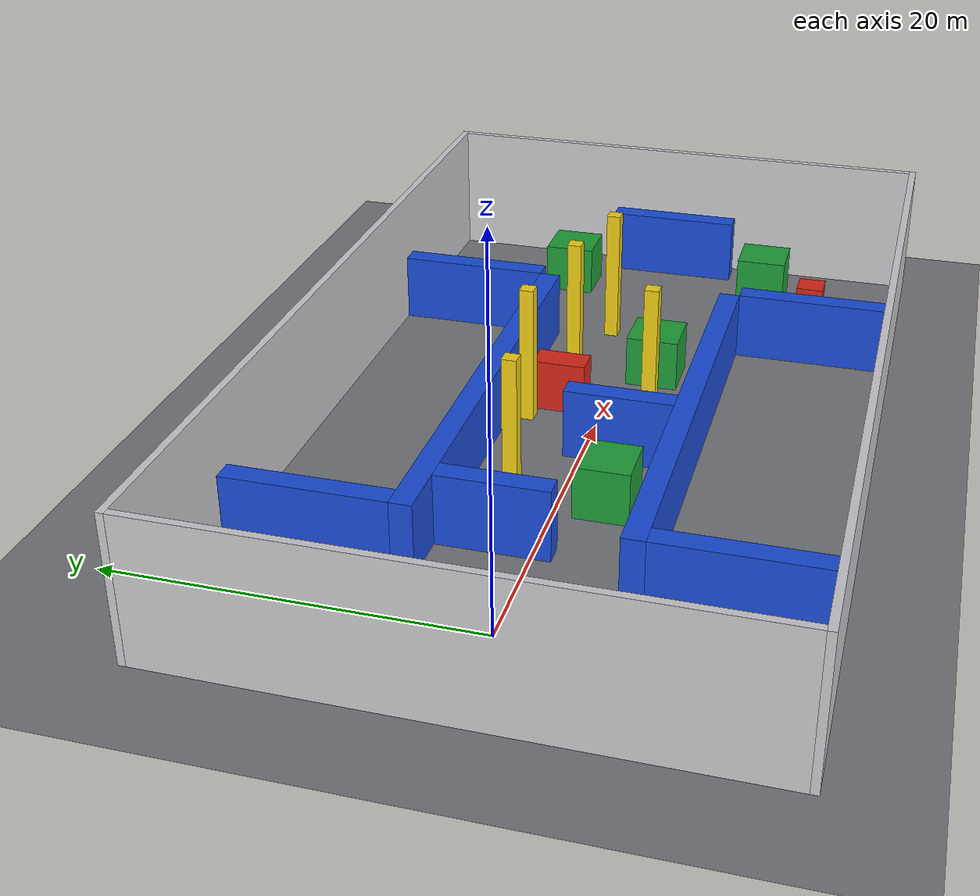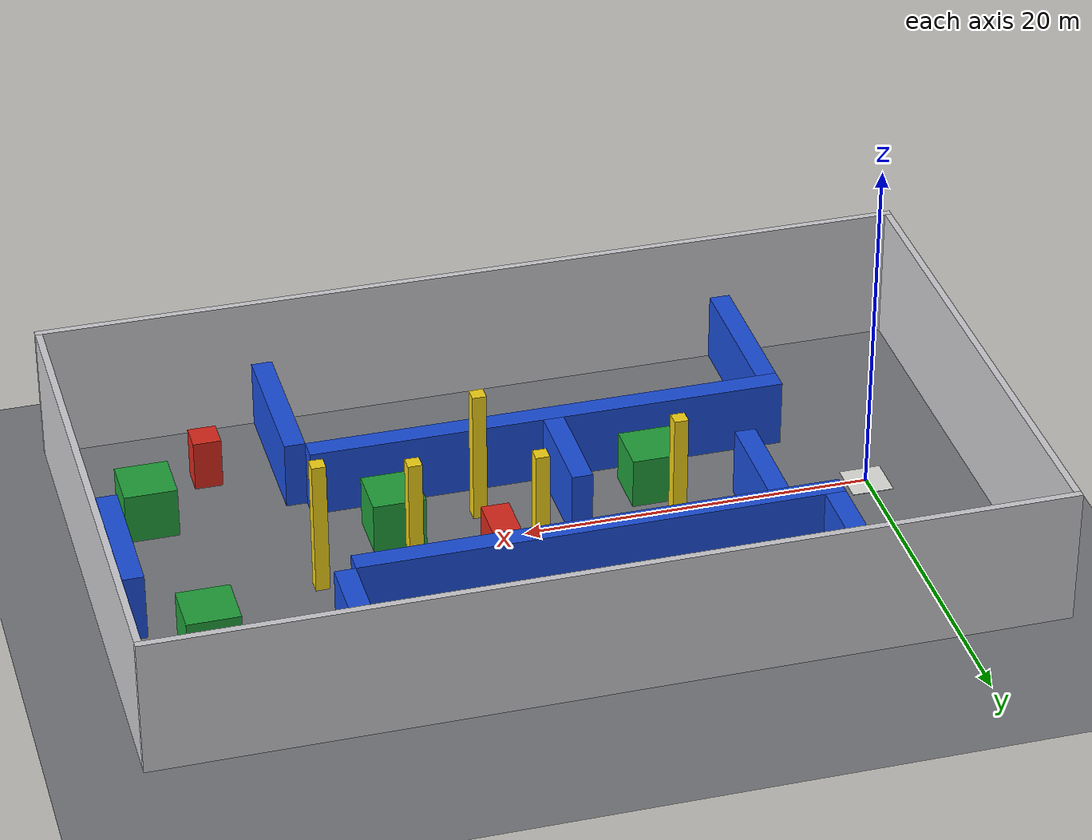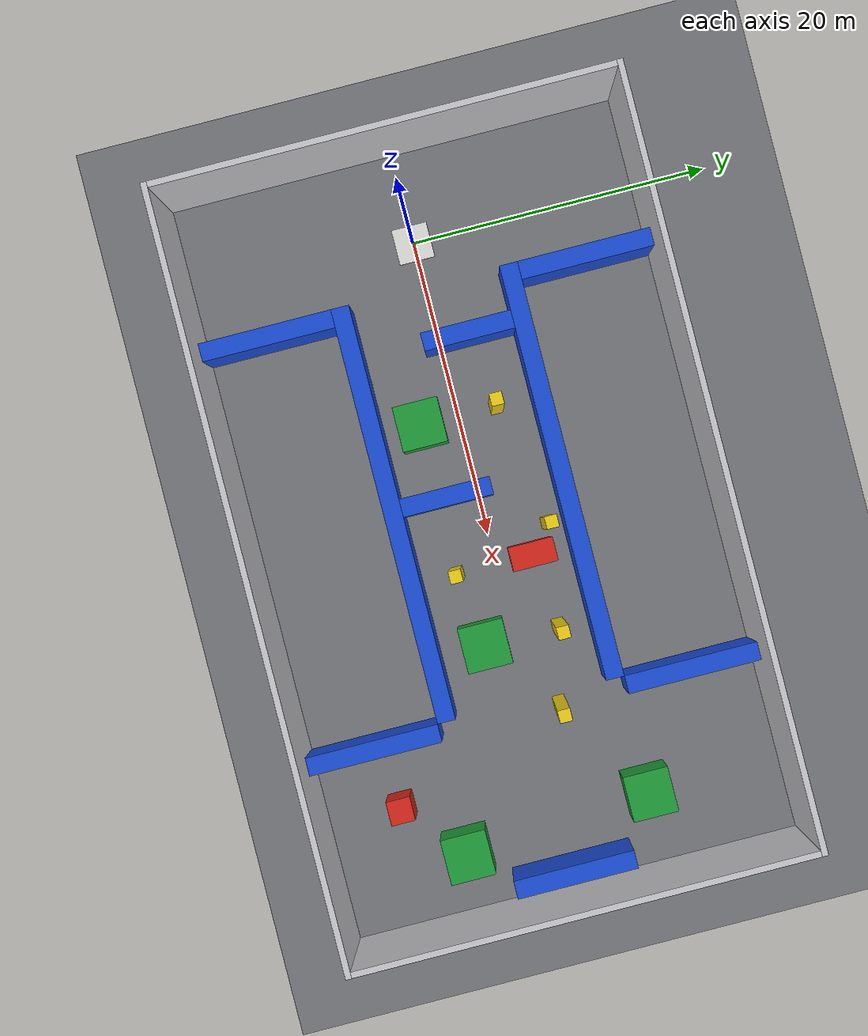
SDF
<?xml version="1.0" ?>
<!-- GENERATED by drone_sim/tools/gen_world.py - do not edit by hand. -->
<sdf version="1.9">
  <world name="factory_hall">
    <physics type="ode">
      <max_step_size>0.004</max_step_size>
      <real_time_factor>1.0</real_time_factor>
      <real_time_update_rate>250</real_time_update_rate>
    </physics>
    <gravity>0 0 -9.8</gravity>
    <magnetic_field>6e-06 2.3e-05 -4.2e-05</magnetic_field>
    <atmosphere type='adiabatic'/>
    <scene>
      <grid>false</grid>
      <ambient>0.5 0.5 0.5 1</ambient>
      <background>0.75 0.78 0.82 1</background>
      <shadows>true</shadows>
    </scene>

    <plugin filename="gz-sim-physics-system"
            name="gz::sim::systems::Physics"/>
    <plugin filename="gz-sim-user-commands-system"
            name="gz::sim::systems::UserCommands"/>
    <plugin filename="gz-sim-scene-broadcaster-system"
            name="gz::sim::systems::SceneBroadcaster"/>
    <plugin filename="gz-sim-contact-system"
            name="gz::sim::systems::Contact"/>
    <plugin filename="gz-sim-imu-system"
            name="gz::sim::systems::Imu"/>
    <plugin filename="gz-sim-air-pressure-system"
            name="gz::sim::systems::AirPressure"/>
    <plugin filename="gz-sim-magnetometer-system"
            name="gz::sim::systems::Magnetometer"/>
    <plugin filename="gz-sim-navsat-system"
            name="gz::sim::systems::NavSat"/>
    <plugin filename="gz-sim-sensors-system"
            name="gz::sim::systems::Sensors">
      <render_engine>ogre2</render_engine>
    </plugin>
    <plugin filename="gz-sim-wind-effects-system"
            name="gz::sim::systems::WindEffects">
      <force_approximation_scaling_factor>1</force_approximation_scaling_factor>
    </plugin>

    <spherical_coordinates>
      <surface_model>EARTH_WGS84</surface_model>
      <world_frame_orientation>ENU</world_frame_orientation>
      <latitude_deg>47.397971057728974</latitude_deg>
      <longitude_deg>8.546163739800146</longitude_deg>
      <elevation>0</elevation>
    </spherical_coordinates>

    <light name="sun" type="directional">
      <pose>0 0 100 0 0 0</pose>
      <cast_shadows>true</cast_shadows>
      <intensity>1</intensity>
      <direction>-0.3 0.2 -0.9</direction>
      <diffuse>0.95 0.95 0.95 1</diffuse>
      <specular>0.25 0.25 0.25 1</specular>
      <attenuation><range>1000</range><constant>1</constant>
        <linear>0</linear><quadratic>0</quadratic></attenuation>
    </light>

    <model name="ground_plane">
      <static>true</static>
      <link name="link">
        <collision name="collision">
          <geometry><plane><normal>0 0 1</normal><size>400 400</size></plane></geometry>
          <surface><friction><ode><mu>1.0</mu><mu2>1.0</mu2></ode></friction></surface>
        </collision>
        <visual name="visual">
          <geometry><plane><normal>0 0 1</normal><size>400 400</size></plane></geometry>
          <material>
            <ambient>0.35 0.36 0.38 1</ambient>
            <diffuse>0.45 0.46 0.48 1</diffuse>
            <specular>0.1 0.1 0.1 1</specular>
          </material>
        </visual>
        <enable_wind>true</enable_wind>
      </link>
    </model>

    <light name="hall_light_0" type="point">
      <pose>2.0 -8.0 7.5 0 0 0</pose>
      <cast_shadows>false</cast_shadows>
      <diffuse>0.55 0.55 0.52 1</diffuse>
      <specular>0.1 0.1 0.1 1</specular>
      <attenuation><range>40</range><constant>0.6</constant>
        <linear>0.02</linear><quadratic>0.0</quadratic></attenuation>
    </light>

    <light name="hall_light_1" type="point">
      <pose>2.0 8.0 7.5 0 0 0</pose>
      <cast_shadows>false</cast_shadows>
      <diffuse>0.55 0.55 0.52 1</diffuse>
      <specular>0.1 0.1 0.1 1</specular>
      <attenuation><range>40</range><constant>0.6</constant>
        <linear>0.02</linear><quadratic>0.0</quadratic></attenuation>
    </light>

    <light name="hall_light_2" type="point">
      <pose>19.0 -8.0 7.5 0 0 0</pose>
      <cast_shadows>false</cast_shadows>
      <diffuse>0.55 0.55 0.52 1</diffuse>
      <specular>0.1 0.1 0.1 1</specular>
      <attenuation><range>40</range><constant>0.6</constant>
        <linear>0.02</linear><quadratic>0.0</quadratic></attenuation>
    </light>

    <light name="hall_light_3" type="point">
      <pose>19.0 8.0 7.5 0 0 0</pose>
      <cast_shadows>false</cast_shadows>
      <diffuse>0.55 0.55 0.52 1</diffuse>
      <specular>0.1 0.1 0.1 1</specular>
      <attenuation><range>40</range><constant>0.6</constant>
        <linear>0.02</linear><quadratic>0.0</quadratic></attenuation>
    </light>

    <light name="hall_light_4" type="point">
      <pose>36.0 -8.0 7.5 0 0 0</pose>
      <cast_shadows>false</cast_shadows>
      <diffuse>0.55 0.55 0.52 1</diffuse>
      <specular>0.1 0.1 0.1 1</specular>
      <attenuation><range>40</range><constant>0.6</constant>
        <linear>0.02</linear><quadratic>0.0</quadratic></attenuation>
    </light>

    <light name="hall_light_5" type="point">
      <pose>36.0 8.0 7.5 0 0 0</pose>
      <cast_shadows>false</cast_shadows>
      <diffuse>0.55 0.55 0.52 1</diffuse>
      <specular>0.1 0.1 0.1 1</specular>
      <attenuation><range>40</range><constant>0.6</constant>
        <linear>0.02</linear><quadratic>0.0</quadratic></attenuation>
    </light>

    <model name="launch_pad">
      <static>true</static>
      <pose>0.0 0.0 0.01 0 0 0</pose>
      <link name="link">
        <visual name="visual">
          <geometry><box><size>2.4 2.4 0.02</size></box></geometry>
          <material>
            <ambient>0.616 0.616 0.602 1</ambient>
            <diffuse>0.88 0.88 0.86 1</diffuse>
          </material>
        </visual>
      </link>
    </model>

    <model name="wall_north">
      <static>true</static>
      <pose>19.0 15.2 4.0 0 0 0</pose>
      <link name="link">
        <collision name="collision">
          <geometry><box><size>50.8 0.4 8.0</size></box></geometry>
        </collision>
        <visual name="visual">
          <geometry><box><size>50.8 0.4 8.0</size></box></geometry>
          <material>
            <ambient>0.5599999999999999 0.5599999999999999 0.574 1</ambient>
            <diffuse>0.8 0.8 0.82 1</diffuse>
          </material>
        </visual>
      </link>
    </model>

    <model name="wall_south">
      <static>true</static>
      <pose>19.0 -15.2 4.0 0 0 0</pose>
      <link name="link">
        <collision name="collision">
          <geometry><box><size>50.8 0.4 8.0</size></box></geometry>
        </collision>
        <visual name="visual">
          <geometry><box><size>50.8 0.4 8.0</size></box></geometry>
          <material>
            <ambient>0.5599999999999999 0.5599999999999999 0.574 1</ambient>
            <diffuse>0.8 0.8 0.82 1</diffuse>
          </material>
        </visual>
      </link>
    </model>

    <model name="wall_east">
      <static>true</static>
      <pose>44.2 0.0 4.0 0 0 0</pose>
      <link name="link">
        <collision name="collision">
          <geometry><box><size>0.4 30.0 8.0</size></box></geometry>
        </collision>
        <visual name="visual">
          <geometry><box><size>0.4 30.0 8.0</size></box></geometry>
          <material>
            <ambient>0.5599999999999999 0.5599999999999999 0.574 1</ambient>
            <diffuse>0.8 0.8 0.82 1</diffuse>
          </material>
        </visual>
      </link>
    </model>

    <model name="wall_west">
      <static>true</static>
      <pose>-6.2 0.0 4.0 0 0 0</pose>
      <link name="link">
        <collision name="collision">
          <geometry><box><size>0.4 30.0 8.0</size></box></geometry>
        </collision>
        <visual name="visual">
          <geometry><box><size>0.4 30.0 8.0</size></box></geometry>
          <material>
            <ambient>0.5599999999999999 0.5599999999999999 0.574 1</ambient>
            <diffuse>0.8 0.8 0.82 1</diffuse>
          </material>
        </visual>
      </link>
    </model>

    <model name="aisle_north">
      <static>true</static>
      <pose>17.25 5.6 2.0 0 0 0</pose>
      <link name="link">
        <collision name="collision">
          <geometry><box><size>27.5 1.2 4.0</size></box></geometry>
        </collision>
        <visual name="visual">
          <geometry><box><size>27.5 1.2 4.0</size></box></geometry>
          <material>
            <ambient>0.06999999999999999 0.21 0.595 1</ambient>
            <diffuse>0.1 0.3 0.85 1</diffuse>
          </material>
        </visual>
      </link>
    </model>

    <model name="aisle_south">
      <static>true</static>
      <pose>17.25 -5.6 2.0 0 0 0</pose>
      <link name="link">
        <collision name="collision">
          <geometry><box><size>27.5 1.2 4.0</size></box></geometry>
        </collision>
        <visual name="visual">
          <geometry><box><size>27.5 1.2 4.0</size></box></geometry>
          <material>
            <ambient>0.06999999999999999 0.21 0.595 1</ambient>
            <diffuse>0.1 0.3 0.85 1</diffuse>
          </material>
        </visual>
      </link>
    </model>

    <model name="store_north">
      <static>true</static>
      <pose>4.1 10.6 2.0 0 0 0</pose>
      <link name="link">
        <collision name="collision">
          <geometry><box><size>1.2 8.8 4.0</size></box></geometry>
        </collision>
        <visual name="visual">
          <geometry><box><size>1.2 8.8 4.0</size></box></geometry>
          <material>
            <ambient>0.06999999999999999 0.21 0.595 1</ambient>
            <diffuse>0.1 0.3 0.85 1</diffuse>
          </material>
        </visual>
      </link>
    </model>

    <model name="store_south">
      <static>true</static>
      <pose>4.1 -10.6 2.0 0 0 0</pose>
      <link name="link">
        <collision name="collision">
          <geometry><box><size>1.2 8.8 4.0</size></box></geometry>
        </collision>
        <visual name="visual">
          <geometry><box><size>1.2 8.8 4.0</size></box></geometry>
          <material>
            <ambient>0.06999999999999999 0.21 0.595 1</ambient>
            <diffuse>0.1 0.3 0.85 1</diffuse>
          </material>
        </visual>
      </link>
    </model>

    <model name="store_north_e">
      <static>true</static>
      <pose>31.6 10.6 2.0 0 0 0</pose>
      <link name="link">
        <collision name="collision">
          <geometry><box><size>1.2 8.8 4.0</size></box></geometry>
        </collision>
        <visual name="visual">
          <geometry><box><size>1.2 8.8 4.0</size></box></geometry>
          <material>
            <ambient>0.06999999999999999 0.21 0.595 1</ambient>
            <diffuse>0.1 0.3 0.85 1</diffuse>
          </material>
        </visual>
      </link>
    </model>

    <model name="store_south_e">
      <static>true</static>
      <pose>31.6 -10.6 2.0 0 0 0</pose>
      <link name="link">
        <collision name="collision">
          <geometry><box><size>1.2 8.8 4.0</size></box></geometry>
        </collision>
        <visual name="visual">
          <geometry><box><size>1.2 8.8 4.0</size></box></geometry>
          <material>
            <ambient>0.06999999999999999 0.21 0.595 1</ambient>
            <diffuse>0.1 0.3 0.85 1</diffuse>
          </material>
        </visual>
      </link>
    </model>

    <model name="rack_1">
      <static>true</static>
      <pose>7.0 2.0 2.0 0 0 0</pose>
      <link name="link">
        <collision name="collision">
          <geometry><box><size>1.2 6.0 4.0</size></box></geometry>
        </collision>
        <visual name="visual">
          <geometry><box><size>1.2 6.0 4.0</size></box></geometry>
          <material>
            <ambient>0.06999999999999999 0.21 0.595 1</ambient>
            <diffuse>0.1 0.3 0.85 1</diffuse>
          </material>
        </visual>
      </link>
    </model>

    <model name="machine_1">
      <static>true</static>
      <pose>12.0 -2.5 1.5 0 0 0</pose>
      <link name="link">
        <collision name="collision">
          <geometry><box><size>3.0 3.0 3.0</size></box></geometry>
        </collision>
        <visual name="visual">
          <geometry><box><size>3.0 3.0 3.0</size></box></geometry>
          <material>
            <ambient>0.08399999999999999 0.434 0.154 1</ambient>
            <diffuse>0.12 0.62 0.22 1</diffuse>
          </material>
        </visual>
      </link>
    </model>

    <model name="rack_2">
      <static>true</static>
      <pose>17.0 -2.0 2.0 0 0 0</pose>
      <link name="link">
        <collision name="collision">
          <geometry><box><size>1.2 6.0 4.0</size></box></geometry>
        </collision>
        <visual name="visual">
          <geometry><box><size>1.2 6.0 4.0</size></box></geometry>
          <material>
            <ambient>0.06999999999999999 0.21 0.595 1</ambient>
            <diffuse>0.1 0.3 0.85 1</diffuse>
          </material>
        </visual>
      </link>
    </model>

    <model name="pallets_1">
      <static>true</static>
      <pose>22.0 2.5 1.5 0 0 0</pose>
      <link name="link">
        <collision name="collision">
          <geometry><box><size>1.6 3.0 3.0</size></box></geometry>
        </collision>
        <visual name="visual">
          <geometry><box><size>1.6 3.0 3.0</size></box></geometry>
          <material>
            <ambient>0.595 0.105 0.06999999999999999 1</ambient>
            <diffuse>0.85 0.15 0.1 1</diffuse>
          </material>
        </visual>
      </link>
    </model>

    <model name="machine_2">
      <static>true</static>
      <pose>27.0 -2.0 1.5 0 0 0</pose>
      <link name="link">
        <collision name="collision">
          <geometry><box><size>3.0 3.0 3.0</size></box></geometry>
        </collision>
        <visual name="visual">
          <geometry><box><size>3.0 3.0 3.0</size></box></geometry>
          <material>
            <ambient>0.08399999999999999 0.434 0.154 1</ambient>
            <diffuse>0.12 0.62 0.22 1</diffuse>
          </material>
        </visual>
      </link>
    </model>

    <model name="pillar_a">
      <static>true</static>
      <pose>12.0 2.6 4.0 0 0 0</pose>
      <link name="link">
        <collision name="collision">
          <geometry><box><size>0.8 0.8 8.0</size></box></geometry>
        </collision>
        <visual name="visual">
          <geometry><box><size>0.8 0.8 8.0</size></box></geometry>
          <material>
            <ambient>0.6649999999999999 0.574 0.055999999999999994 1</ambient>
            <diffuse>0.95 0.82 0.08 1</diffuse>
          </material>
        </visual>
      </link>
    </model>

    <model name="pillar_b">
      <static>true</static>
      <pose>22.0 -2.6 4.0 0 0 0</pose>
      <link name="link">
        <collision name="collision">
          <geometry><box><size>0.8 0.8 8.0</size></box></geometry>
        </collision>
        <visual name="visual">
          <geometry><box><size>0.8 0.8 8.0</size></box></geometry>
          <material>
            <ambient>0.6649999999999999 0.574 0.055999999999999994 1</ambient>
            <diffuse>0.95 0.82 0.08 1</diffuse>
          </material>
        </visual>
      </link>
    </model>

    <model name="pillar_d">
      <static>true</static>
      <pose>27.0 3.0 4.0 0 0 0</pose>
      <link name="link">
        <collision name="collision">
          <geometry><box><size>0.8 0.8 8.0</size></box></geometry>
        </collision>
        <visual name="visual">
          <geometry><box><size>0.8 0.8 8.0</size></box></geometry>
          <material>
            <ambient>0.6649999999999999 0.574 0.055999999999999994 1</ambient>
            <diffuse>0.95 0.82 0.08 1</diffuse>
          </material>
        </visual>
      </link>
    </model>

    <model name="pillar_e">
      <static>true</static>
      <pose>20.2 4.0 4.0 0 0 0</pose>
      <link name="link">
        <collision name="collision">
          <geometry><box><size>0.8 0.8 8.0</size></box></geometry>
        </collision>
        <visual name="visual">
          <geometry><box><size>0.8 0.8 8.0</size></box></geometry>
          <material>
            <ambient>0.6649999999999999 0.574 0.055999999999999994 1</ambient>
            <diffuse>0.95 0.82 0.08 1</diffuse>
          </material>
        </visual>
      </link>
    </model>

    <model name="pillar_c">
      <static>true</static>
      <pose>32.0 1.8 4.0 0 0 0</pose>
      <link name="link">
        <collision name="collision">
          <geometry><box><size>0.8 0.8 8.0</size></box></geometry>
        </collision>
        <visual name="visual">
          <geometry><box><size>0.8 0.8 8.0</size></box></geometry>
          <material>
            <ambient>0.6649999999999999 0.574 0.055999999999999994 1</ambient>
            <diffuse>0.95 0.82 0.08 1</diffuse>
          </material>
        </visual>
      </link>
    </model>

    <model name="machine_3">
      <static>true</static>
      <pose>39.0 6.0 1.5 0 0 0</pose>
      <link name="link">
        <collision name="collision">
          <geometry><box><size>3.0 3.0 3.0</size></box></geometry>
        </collision>
        <visual name="visual">
          <geometry><box><size>3.0 3.0 3.0</size></box></geometry>
          <material>
            <ambient>0.08399999999999999 0.434 0.154 1</ambient>
            <diffuse>0.12 0.62 0.22 1</diffuse>
          </material>
        </visual>
      </link>
    </model>

    <model name="machine_4">
      <static>true</static>
      <pose>40.0 -6.5 1.5 0 0 0</pose>
      <link name="link">
        <collision name="collision">
          <geometry><box><size>3.0 3.0 3.0</size></box></geometry>
        </collision>
        <visual name="visual">
          <geometry><box><size>3.0 3.0 3.0</size></box></geometry>
          <material>
            <ambient>0.08399999999999999 0.434 0.154 1</ambient>
            <diffuse>0.12 0.62 0.22 1</diffuse>
          </material>
        </visual>
      </link>
    </model>

    <model name="pallets_2">
      <static>true</static>
      <pose>36.0 -10.0 1.5 0 0 0</pose>
      <link name="link">
        <collision name="collision">
          <geometry><box><size>1.6 1.6 3.0</size></box></geometry>
        </collision>
        <visual name="visual">
          <geometry><box><size>1.6 1.6 3.0</size></box></geometry>
          <material>
            <ambient>0.595 0.105 0.06999999999999999 1</ambient>
            <diffuse>0.85 0.15 0.1 1</diffuse>
          </material>
        </visual>
      </link>
    </model>

    <model name="rack_3">
      <static>true</static>
      <pose>42.6 0.0 2.0 0 0 0</pose>
      <link name="link">
        <collision name="collision">
          <geometry><box><size>1.2 8.0 4.0</size></box></geometry>
        </collision>
        <visual name="visual">
          <geometry><box><size>1.2 8.0 4.0</size></box></geometry>
          <material>
            <ambient>0.06999999999999999 0.21 0.595 1</ambient>
            <diffuse>0.1 0.3 0.85 1</diffuse>
          </material>
        </visual>
      </link>
    </model>

  </world>
</sdf>
